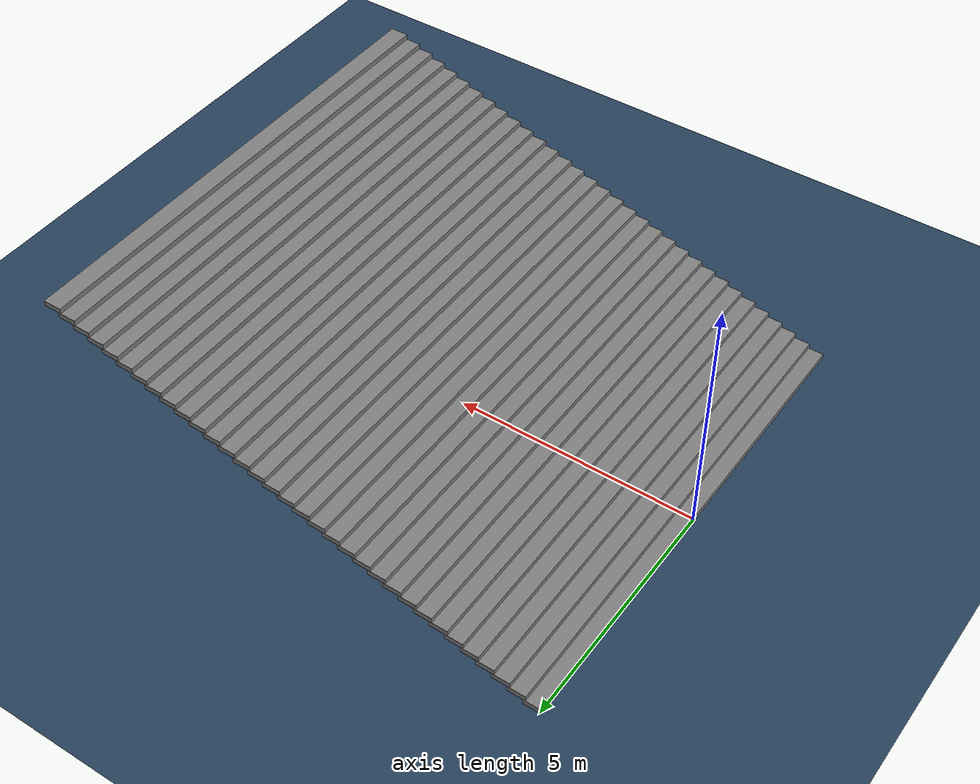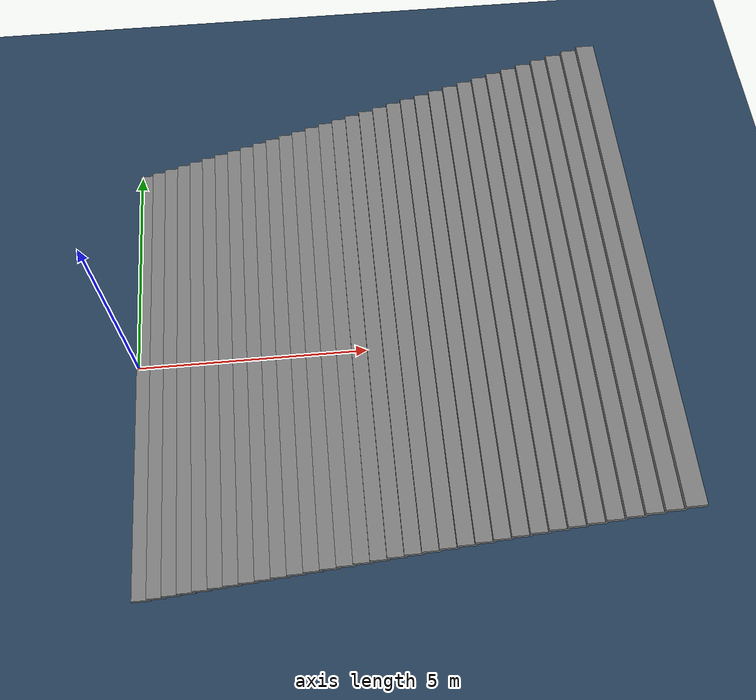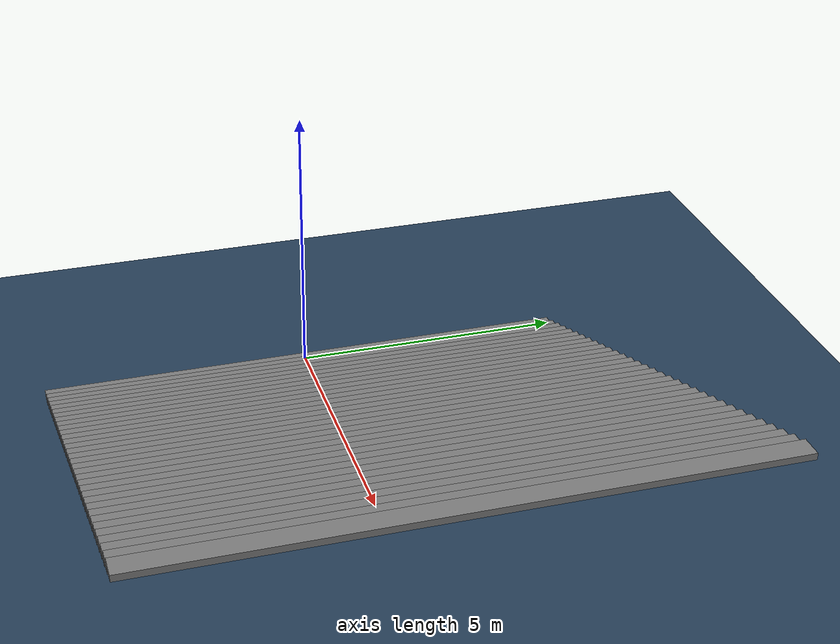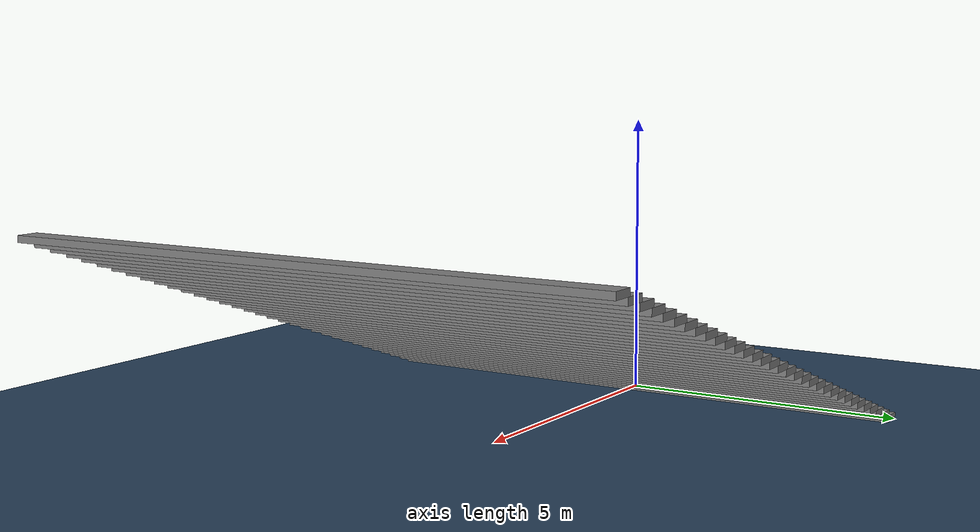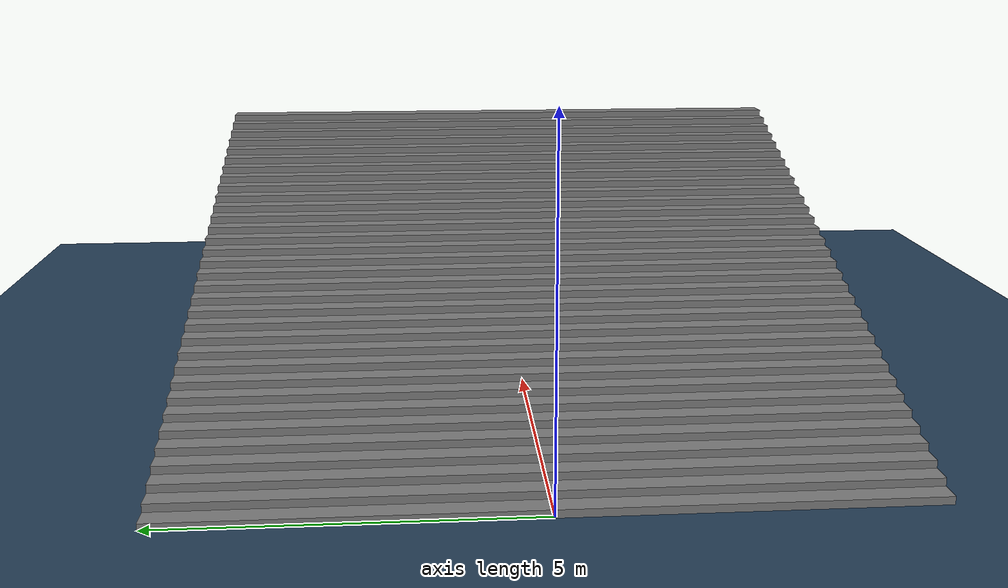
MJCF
<mujoco model="stairs_up_2">
  <!-- Terrain Type: stairs_up, Level: 2, Stairs step height: 0.1100 -->
  <statistic center="0 0 0.1" extent="0.8" />
  <visual>
    <headlight diffuse="0.6 0.6 0.6" ambient="0.3 0.3 0.3" specular="0 0 0" />
    <rgba haze="0.15 0.25 0.35 1" />
    <global azimuth="-130" elevation="-20" />
  </visual>
  <asset>
    <texture type="skybox" builtin="gradient" rgb1="0.3 0.5 0.7" rgb2="0 0 0" width="512" height="3072" />
    <texture type="2d" name="groundplane" builtin="checker" mark="edge" rgb1="0.2 0.3 0.4" rgb2="0.1 0.2 0.3" markrgb="0.8 0.8 0.8" width="300" height="300" />
    <material name="groundplane" texture="groundplane" texuniform="true" texrepeat="5 5" reflectance="0.0" />
  </asset>
  <worldbody>
    <light pos="0 0 1.5" dir="0 0 -1" directional="true" />
    <geom name="floor" size="0 0 0.05" type="plane" material="groundplane" />
    <geom pos="0.155 0.0 0.055" type="box" size="0.186 5.0 0.055" quat="1.0 0.0 0.0 0.0" />
    <geom pos="0.46499999999999997 0.0 0.165" type="box" size="0.186 5.0 0.055" quat="1.0 0.0 0.0 0.0" />
    <geom pos="0.7749999999999999 0.0 0.275" type="box" size="0.186 5.0 0.055" quat="1.0 0.0 0.0 0.0" />
    <geom pos="1.085 0.0 0.385" type="box" size="0.186 5.0 0.055" quat="1.0 0.0 0.0 0.0" />
    <geom pos="1.395 0.0 0.495" type="box" size="0.186 5.0 0.055" quat="1.0 0.0 0.0 0.0" />
    <geom pos="1.705 0.0 0.605" type="box" size="0.186 5.0 0.055" quat="1.0 0.0 0.0 0.0" />
    <geom pos="2.015 0.0 0.715" type="box" size="0.186 5.0 0.055" quat="1.0 0.0 0.0 0.0" />
    <geom pos="2.325 0.0 0.825" type="box" size="0.186 5.0 0.055" quat="1.0 0.0 0.0 0.0" />
    <geom pos="2.6350000000000002 0.0 0.9349999999999999" type="box" size="0.186 5.0 0.055" quat="1.0 0.0 0.0 0.0" />
    <geom pos="2.9450000000000003 0.0 1.045" type="box" size="0.186 5.0 0.055" quat="1.0 0.0 0.0 0.0" />
    <geom pos="3.2550000000000003 0.0 1.155" type="box" size="0.186 5.0 0.055" quat="1.0 0.0 0.0 0.0" />
    <geom pos="3.5650000000000004 0.0 1.2650000000000001" type="box" size="0.186 5.0 0.055" quat="1.0 0.0 0.0 0.0" />
    <geom pos="3.8750000000000004 0.0 1.3750000000000002" type="box" size="0.186 5.0 0.055" quat="1.0 0.0 0.0 0.0" />
    <geom pos="4.1850000000000005 0.0 1.4850000000000003" type="box" size="0.186 5.0 0.055" quat="1.0 0.0 0.0 0.0" />
    <geom pos="4.495 0.0 1.5950000000000004" type="box" size="0.186 5.0 0.055" quat="1.0 0.0 0.0 0.0" />
    <geom pos="4.805 0.0 1.7050000000000005" type="box" size="0.186 5.0 0.055" quat="1.0 0.0 0.0 0.0" />
    <geom pos="5.114999999999999 0.0 1.8150000000000006" type="box" size="0.186 5.0 0.055" quat="1.0 0.0 0.0 0.0" />
    <geom pos="5.424999999999999 0.0 1.9250000000000007" type="box" size="0.186 5.0 0.055" quat="1.0 0.0 0.0 0.0" />
    <geom pos="5.7349999999999985 0.0 2.0350000000000006" type="box" size="0.186 5.0 0.055" quat="1.0 0.0 0.0 0.0" />
    <geom pos="6.044999999999998 0.0 2.1450000000000005" type="box" size="0.186 5.0 0.055" quat="1.0 0.0 0.0 0.0" />
    <geom pos="6.354999999999998 0.0 2.2550000000000003" type="box" size="0.186 5.0 0.055" quat="1.0 0.0 0.0 0.0" />
    <geom pos="6.664999999999997 0.0 2.365" type="box" size="0.186 5.0 0.055" quat="1.0 0.0 0.0 0.0" />
    <geom pos="6.974999999999997 0.0 2.475" type="box" size="0.186 5.0 0.055" quat="1.0 0.0 0.0 0.0" />
    <geom pos="7.284999999999997 0.0 2.585" type="box" size="0.186 5.0 0.055" quat="1.0 0.0 0.0 0.0" />
    <geom pos="7.594999999999996 0.0 2.695" type="box" size="0.186 5.0 0.055" quat="1.0 0.0 0.0 0.0" />
    <geom pos="7.904999999999996 0.0 2.8049999999999997" type="box" size="0.186 5.0 0.055" quat="1.0 0.0 0.0 0.0" />
    <geom pos="8.214999999999996 0.0 2.9149999999999996" type="box" size="0.186 5.0 0.055" quat="1.0 0.0 0.0 0.0" />
    <geom pos="8.524999999999997 0.0 3.0249999999999995" type="box" size="0.186 5.0 0.055" quat="1.0 0.0 0.0 0.0" />
    <geom pos="8.834999999999997 0.0 3.1349999999999993" type="box" size="0.186 5.0 0.055" quat="1.0 0.0 0.0 0.0" />
    <geom pos="9.144999999999998 0.0 3.244999999999999" type="box" size="0.186 5.0 0.055" quat="1.0 0.0 0.0 0.0" />
    <geom pos="9.454999999999998 0.0 3.354999999999999" type="box" size="0.186 5.0 0.055" quat="1.0 0.0 0.0 0.0" />
    <geom pos="9.764999999999999 0.0 3.464999999999999" type="box" size="0.186 5.0 0.055" quat="1.0 0.0 0.0 0.0" />
    <geom pos="10.075 0.0 3.574999999999999" type="box" size="0.186 5.0 0.055" quat="1.0 0.0 0.0 0.0" />
  </worldbody>
</mujoco>
